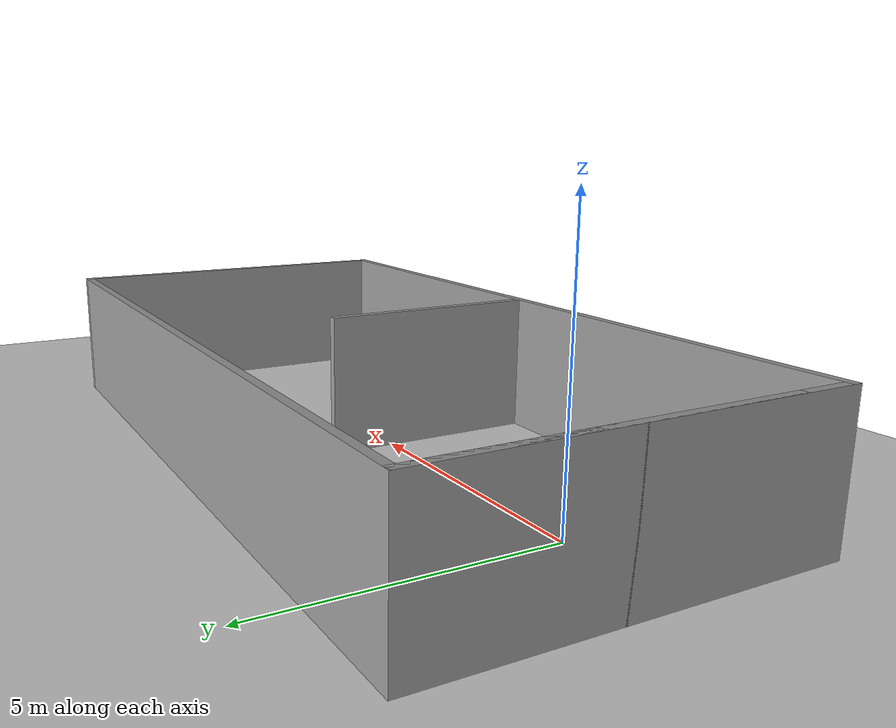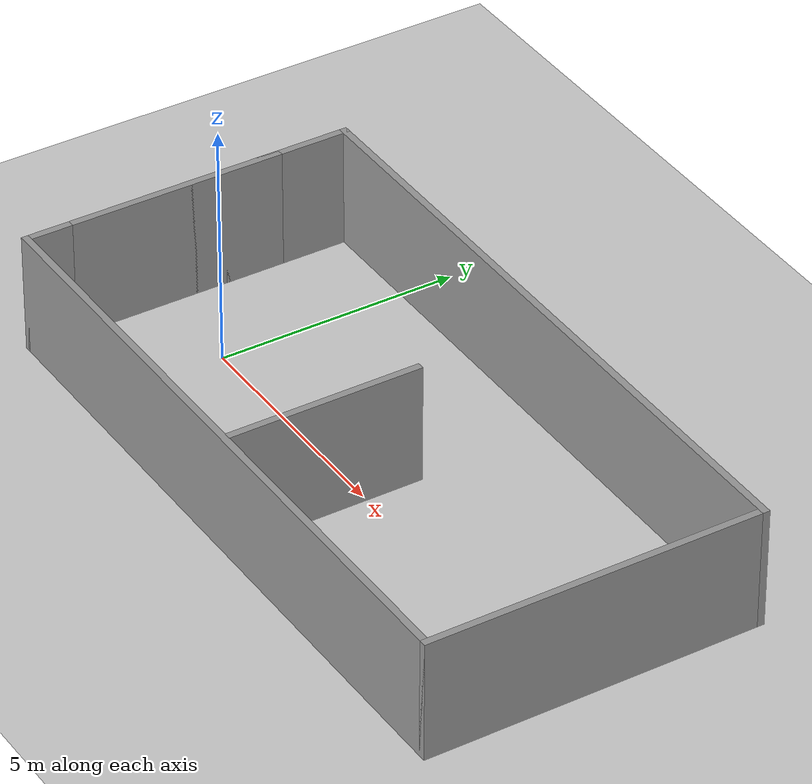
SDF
<sdf version="1.6">
 <world name="default">
  <light name="sun" type="directional">
   <pose>0 0 10 0 -0 0</pose>
   <diffuse>0.8 0.8 0.8 1</diffuse>
   <specular>0.2 0.2 0.2 1</specular>
   <attenuation>
    <range>1000</range>
    <constant>0.9</constant>
    <linear>0.01</linear>
    <quadratic>0.001</quadratic>
   </attenuation>
   <direction>-0.5 0.1 -0.9</direction>
  </light>
  <model name="ground_plane">
   <static>1</static>
   <link name="link">
    <collision name="collision">
     <geometry><plane><normal>0 0 1</normal><size>100 100</size></plane></geometry>
     <surface>
      <contact><collide_bitmask>65535</collide_bitmask></contact>
      <friction><ode><mu>100</mu><mu2>50</mu2></ode></friction>
     </surface>
    </collision>
    <visual name="visual">
     <cast_shadows>0</cast_shadows>
     <geometry><plane><normal>0 0 1</normal><size>100 100</size></plane></geometry>
     <material>
      <script><uri>file://media/materials/scripts/gazebo.material</uri><name>Gazebo/Grey</name></script>
     </material>
    </visual>
   </link>
  </model>
  <gravity>0 0 -9.8</gravity>
  <magnetic_field>6e-06 2.3e-05 -4.2e-05</magnetic_field>
  <atmosphere type="adiabatic"/>
  <physics name="default_physics" default="0" type="ode">
   <max_step_size>0.001</max_step_size>
   <real_time_factor>1</real_time_factor>
   <real_time_update_rate>1000</real_time_update_rate>
  </physics>
  <scene><ambient>0.4 0.4 0.4 1</ambient><background>0.7 0.7 0.7 1</background><shadows>1</shadows></scene>
  <audio><device>default</device></audio>
  <spherical_coordinates>
   <surface_model>EARTH_WGS84</surface_model>
   <latitude_deg>0</latitude_deg>
   <longitude_deg>0</longitude_deg>
   <elevation>0</elevation>
   <heading_deg>0</heading_deg>
  </spherical_coordinates>
  <model name="lab">
   <pose>4.79133 0.54104 0 0 -0 0</pose>
   <link name="Wall_10">
    <collision name="Wall_10_Collision">
     <geometry><box><size>14 0.15 2.5</size></box></geometry>
     <pose>0 0 1.25 0 -0 0</pose>
    </collision>
    <visual name="Wall_10_Visual">
     <pose>0 0 1.25 0 -0 0</pose>
     <geometry><box><size>14 0.15 2.5</size></box></geometry>
     <material>
      <script><uri>file://media/materials/scripts/gazebo.material</uri><name>Gazebo/Grey</name></script>
      <ambient>1 1 1 1</ambient>
     </material>
     <meta><layer>0</layer></meta>
    </visual>
    <pose>0 3.425 0 0 -0 3.14159</pose>
   </link>
   <link name="Wall_12">
    <collision name="Wall_12_Collision">
     <geometry><box><size>4 0.15 2.5</size></box></geometry>
     <pose>0 0 1.25 0 -0 0</pose>
    </collision>
    <visual name="Wall_12_Visual">
     <pose>0 0 1.25 0 -0 0</pose>
     <geometry><box><size>4 0.15 2.5</size></box></geometry>
     <material>
      <script><uri>file://media/materials/scripts/gazebo.material</uri><name>Gazebo/Grey</name></script>
      <ambient>1 1 1 1</ambient>
     </material>
     <meta><layer>0</layer></meta>
    </visual>
    <pose>0.255497 -1.35993 0 0 -0 1.5708</pose>
   </link>
   <link name="Wall_4">
    <collision name="Wall_4_Collision">
     <geometry><box><size>1.25 0.15 2.5</size></box></geometry>
     <pose>0 0 1.25 0 -0 0</pose>
    </collision>
    <visual name="Wall_4_Visual">
     <pose>0 0 1.25 0 -0 0</pose>
     <geometry><box><size>1.25 0.15 2.5</size></box></geometry>
     <material>
      <script><uri>file://media/materials/scripts/gazebo.material</uri><name>Gazebo/Grey</name></script>
      <ambient>1 1 1 1</ambient>
     </material>
     <meta><layer>0</layer></meta>
    </visual>
    <pose>-6.925 1.375 0 0 -0 1.5708</pose>
   </link>
   <link name="Wall_5">
    <collision name="Wall_5_Collision">
     <geometry><box><size>4.5 0.15 2.5</size></box></geometry>
     <pose>0 0 1.25 0 -0 0</pose>
    </collision>
    <visual name="Wall_5_Visual">
     <pose>0 0 1.25 0 -0 0</pose>
     <geometry><box><size>4.5 0.15 2.5</size></box></geometry>
     <material>
      <script><uri>file://media/materials/scripts/gazebo.material</uri><name>Gazebo/Grey</name></script>
      <ambient>1 1 1 1</ambient>
     </material>
     <meta><layer>0</layer></meta>
    </visual>
    <pose>-6.925 -0.25 0 0 -0 -1.5708</pose>
   </link>
   <link name="Wall_6">
    <collision name="Wall_6_Collision">
     <geometry><box><size>6 0.15 2.5</size></box></geometry>
     <pose>0 0 1.25 0 -0 0</pose>
    </collision>
    <visual name="Wall_6_Visual">
     <pose>0 0 1.25 0 -0 0</pose>
     <geometry><box><size>6 0.15 2.5</size></box></geometry>
     <material>
      <script><uri>file://media/materials/scripts/gazebo.material</uri><name>Gazebo/Grey</name></script>
      <ambient>1 1 1 1</ambient>
     </material>
     <meta><layer>0</layer></meta>
    </visual>
    <pose>-6.925 0.5 0 0 -0 1.5708</pose>
   </link>
   <link name="Wall_7">
    <collision name="Wall_7_Collision">
     <geometry><box><size>7 0.15 2.5</size></box></geometry>
     <pose>0 0 1.25 0 -0 0</pose>
    </collision>
    <visual name="Wall_7_Visual">
     <pose>0 0 1.25 0 -0 0</pose>
     <geometry><box><size>7 0.15 2.5</size></box></geometry>
     <material>
      <script><uri>file://media/materials/scripts/gazebo.material</uri><name>Gazebo/Grey</name></script>
      <ambient>1 1 1 1</ambient>
     </material>
     <meta><layer>0</layer></meta>
    </visual>
    <pose>-6.925 0 0 0 -0 -1.5708</pose>
   </link>
   <link name="Wall_8">
    <collision name="Wall_8_Collision">
     <geometry><box><size>14 0.15 2.5</size></box></geometry>
     <pose>0 0 1.25 0 -0 0</pose>
    </collision>
    <visual name="Wall_8_Visual">
     <pose>0 0 1.25 0 -0 0</pose>
     <geometry><box><size>14 0.15 2.5</size></box></geometry>
     <material>
      <script><uri>file://media/materials/scripts/gazebo.material</uri><name>Gazebo/Grey</name></script>
      <ambient>1 1 1 1</ambient>
     </material>
     <meta><layer>0</layer></meta>
    </visual>
    <pose>0 -3.425 0 0 -0 0</pose>
   </link>
   <link name="Wall_9">
    <collision name="Wall_9_Collision">
     <geometry><box><size>7 0.15 2.5</size></box></geometry>
     <pose>0 0 1.25 0 -0 0</pose>
    </collision>
    <visual name="Wall_9_Visual">
     <pose>0 0 1.25 0 -0 0</pose>
     <geometry><box><size>7 0.15 2.5</size></box></geometry>
     <material>
      <script><uri>file://media/materials/scripts/gazebo.material</uri><name>Gazebo/Grey</name></script>
      <ambient>1 1 1 1</ambient>
     </material>
     <meta><layer>0</layer></meta>
    </visual>
    <pose>6.925 0 0 0 -0 1.5708</pose>
   </link>
   <static>1</static>
  </model>
 </world>
</sdf>
